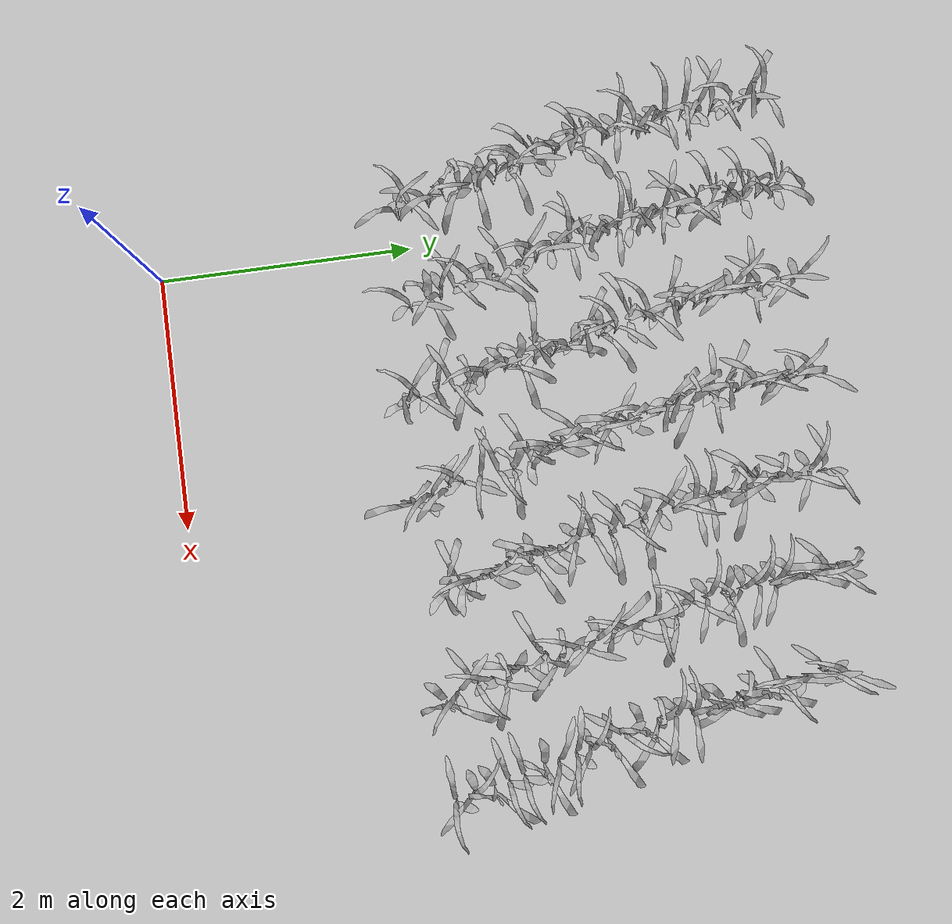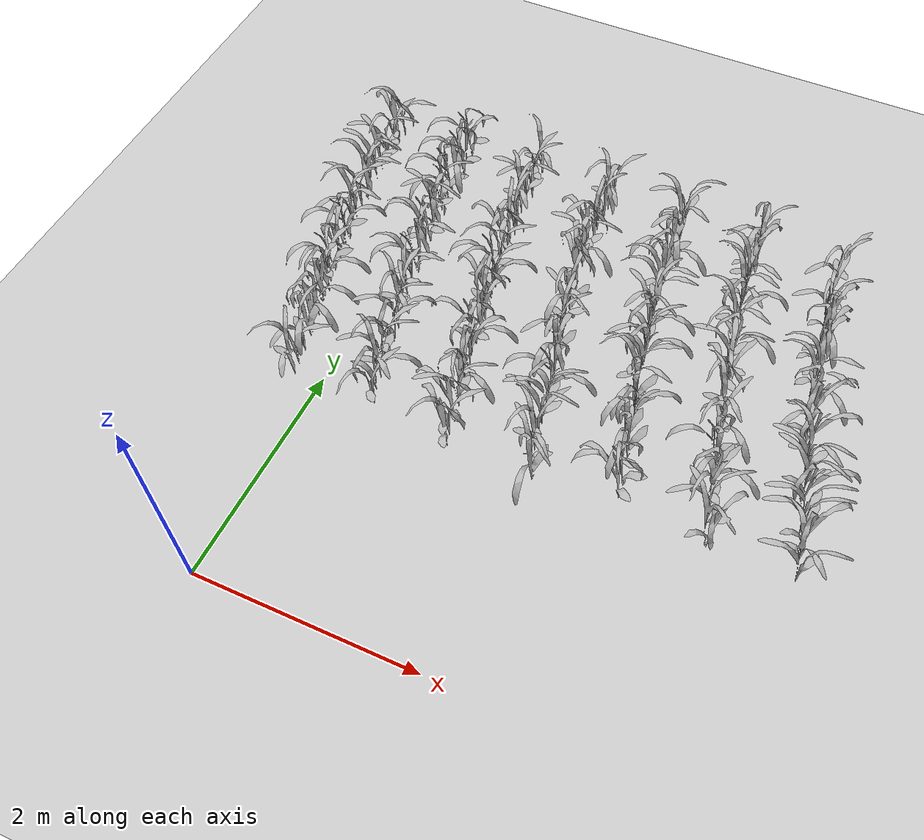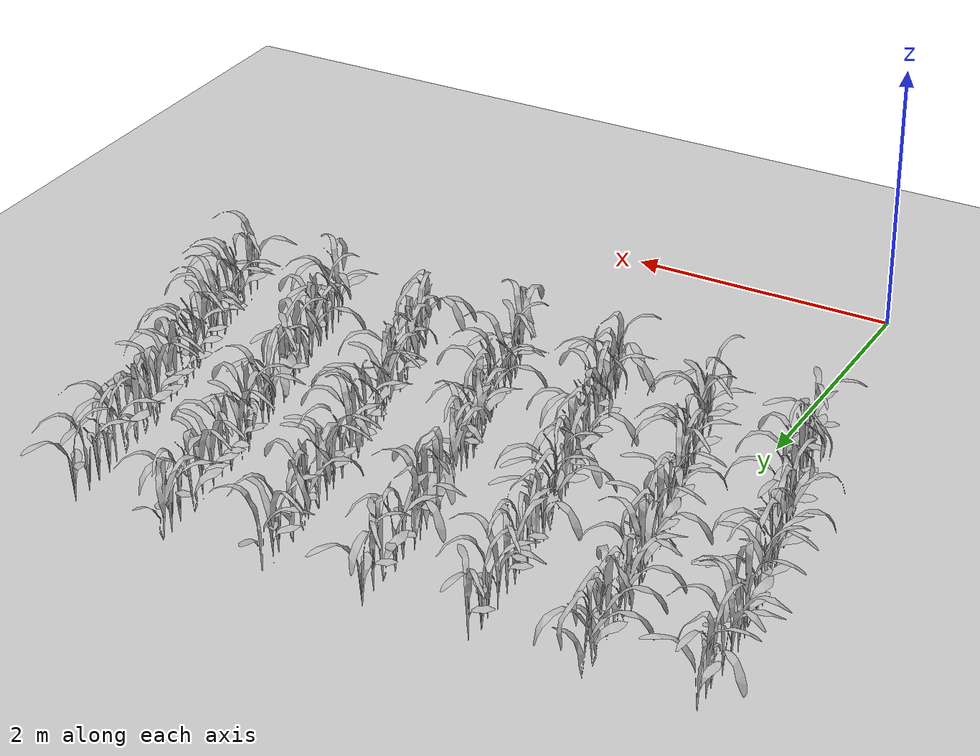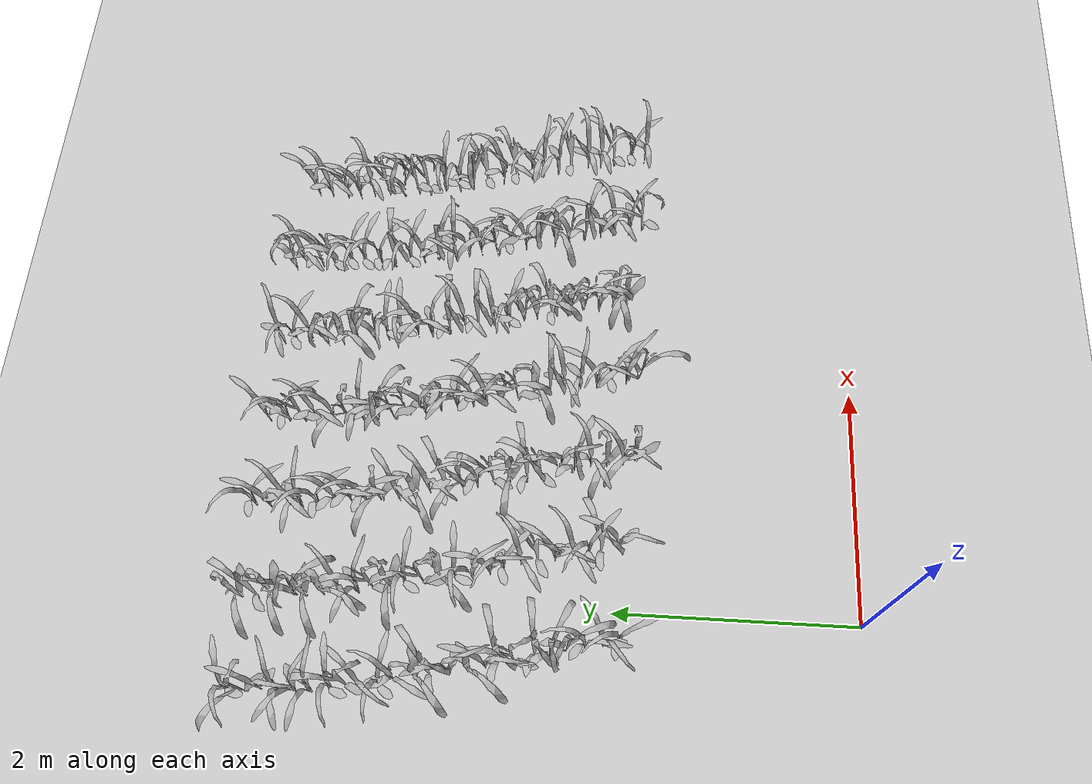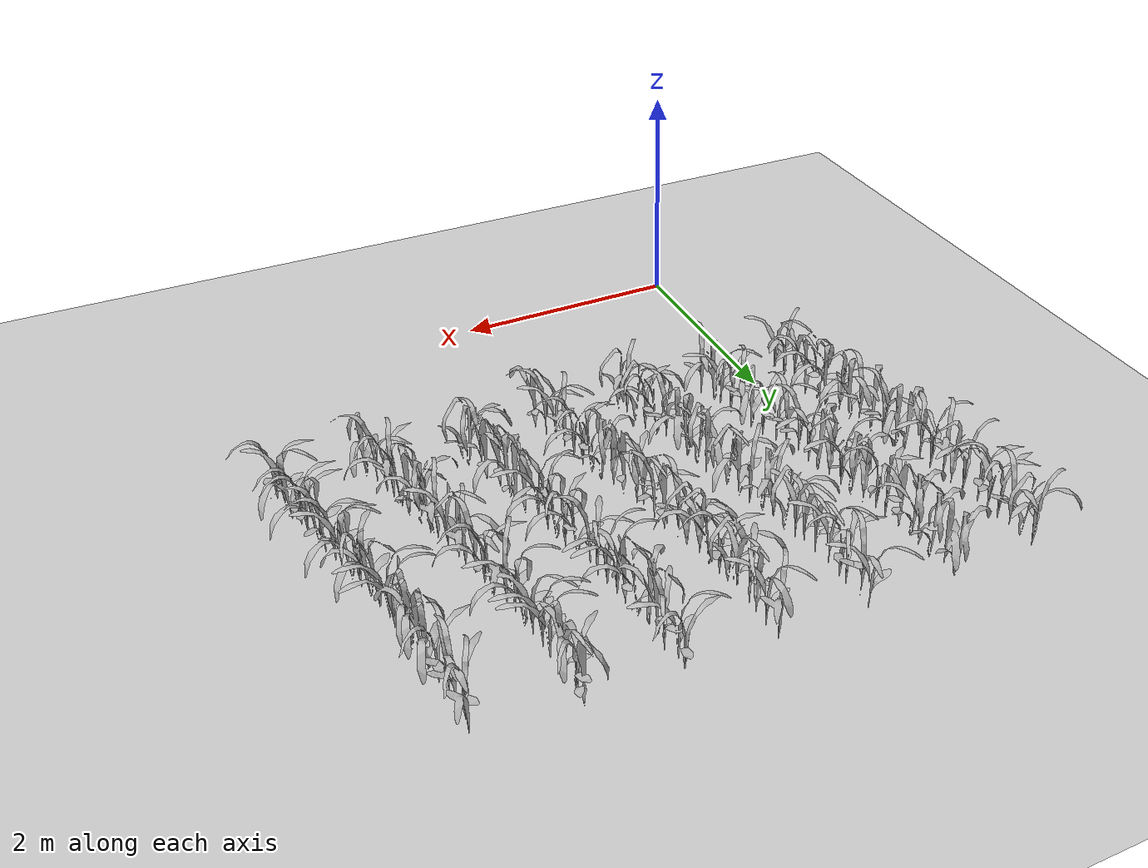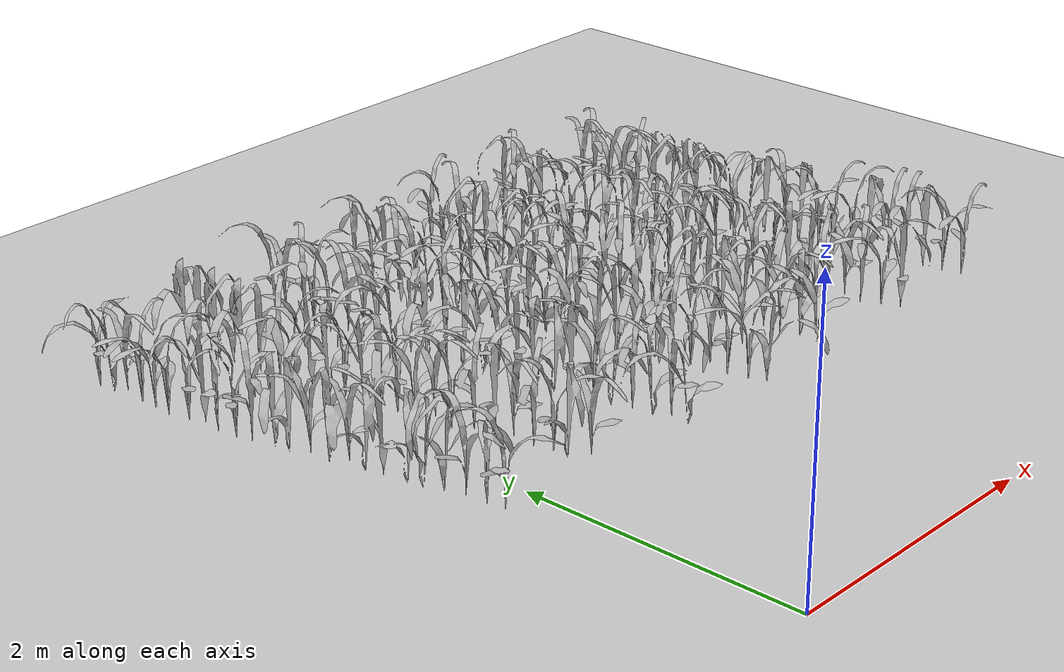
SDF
<sdf version="1.7">
 <world name="default">
  <model name="ground_plane">
   <static>1</static>
   <link name="link">
    <collision name="collision">
     <geometry><plane><normal>0 0 1</normal><size>100 100</size></plane></geometry>
     <surface>
      <contact><collide_bitmask>65535</collide_bitmask></contact>
      <friction><ode><mu>100</mu><mu2>50</mu2></ode></friction>
     </surface>
    </collision>
    <visual name="visual">
     <cast_shadows>0</cast_shadows>
     <geometry><plane><normal>0 0 1</normal><size>100 100</size></plane></geometry>
     <material>
      <script><uri>file://media/materials/scripts/gazebo.material</uri><name>Gazebo/Grey</name></script>
     </material>
    </visual>
   </link>
  </model>
  <include>
   <uri>model://maize_02</uri>
   <pose>-0.24445892764736263 1.9384839961958205 0.0 0.0 0.0 1.0710391218585216</pose>
   <name>maize_02_0365</name>
   <static>true</static>
  </include>
  <include>
   <uri>model://maize_02</uri>
   <pose>-0.27427350530817424 2.053474584799019 0.0 0.0 0.0 2.7879307663528508</pose>
   <name>maize_02_0366</name>
   <static>true</static>
  </include>
  <include>
   <uri>model://maize_02</uri>
   <pose>-0.29909877031778304 2.1970733973737597 0.0 0.0 0.0 0.4922373083842252</pose>
   <name>maize_02_0367</name>
   <static>true</static>
  </include>
  <include>
   <uri>model://maize_01</uri>
   <pose>-0.32571598476350544 2.3446832980346977 0.0 0.0 0.0 5.929734194963458</pose>
   <name>maize_01_0368</name>
   <static>true</static>
  </include>
  <include>
   <uri>model://maize_01</uri>
   <pose>-0.3722263588799824 2.466154109992123 0.0 0.0 0.0 0.3753085193743158</pose>
   <name>maize_01_0369</name>
   <static>true</static>
  </include>
  <include>
   <uri>model://maize_01</uri>
   <pose>-0.38595312293316414 2.5805051813929896 0.0 0.0 0.0 0.9356842475710311</pose>
   <name>maize_01_0370</name>
   <static>true</static>
  </include>
  <include>
   <uri>model://maize_01</uri>
   <pose>-0.42900116233821733 2.735872208015546 0.0 0.0 0.0 2.3897633508217253</pose>
   <name>maize_01_0371</name>
   <static>true</static>
  </include>
  <include>
   <uri>model://maize_01</uri>
   <pose>-0.44737855095906937 2.866231424387552 0.0 0.0 0.0 1.0767705662089158</pose>
   <name>maize_01_0372</name>
   <static>true</static>
  </include>
  <include>
   <uri>model://maize_02</uri>
   <pose>-0.48446931470679405 2.9616740798866252 0.0 0.0 0.0 3.564089215423871</pose>
   <name>maize_02_0373</name>
   <static>true</static>
  </include>
  <include>
   <uri>model://maize_01</uri>
   <pose>-0.5270350517395709 3.097213238053348 0.0 0.0 0.0 4.827960391614151</pose>
   <name>maize_01_0374</name>
   <static>true</static>
  </include>
  <include>
   <uri>model://maize_02</uri>
   <pose>-0.5421163956441427 3.234525912303266 0.0 0.0 0.0 4.072297796404714</pose>
   <name>maize_02_0375</name>
   <static>true</static>
  </include>
  <include>
   <uri>model://maize_01</uri>
   <pose>-0.5742396151583463 3.3835778522982722 0.0 0.0 0.0 1.4798450669164558</pose>
   <name>maize_01_0376</name>
   <static>true</static>
  </include>
  <include>
   <uri>model://maize_01</uri>
   <pose>-0.5982524000756028 3.490787464547854 0.0 0.0 0.0 4.645254110408282</pose>
   <name>maize_01_0377</name>
   <static>true</static>
  </include>
  <include>
   <uri>model://maize_02</uri>
   <pose>-0.639140133071446 3.6475700670385796 0.0 0.0 0.0 0.11293152083749888</pose>
   <name>maize_02_0378</name>
   <static>true</static>
  </include>
  <include>
   <uri>model://maize_02</uri>
   <pose>-0.6683789753091002 3.7555709422397983 0.0 0.0 0.0 2.0072900729207936</pose>
   <name>maize_02_0379</name>
   <static>true</static>
  </include>
  <include>
   <uri>model://maize_02</uri>
   <pose>-0.689659808126747 3.8962261183374527 0.0 0.0 0.0 3.0424600085870614</pose>
   <name>maize_02_0380</name>
   <static>true</static>
  </include>
  <include>
   <uri>model://maize_01</uri>
   <pose>-0.682284637268196 4.015514365349149 0.0 0.0 0.0 2.415459327614074</pose>
   <name>maize_01_0381</name>
   <static>true</static>
  </include>
  <include>
   <uri>model://maize_02</uri>
   <pose>-0.7152451021549532 4.131930696935686 0.0 0.0 0.0 2.299748197654124</pose>
   <name>maize_02_0382</name>
   <static>true</static>
  </include>
  <include>
   <uri>model://maize_02</uri>
   <pose>-0.7451488394861155 4.290696565122539 0.0 0.0 0.0 5.146302556725242</pose>
   <name>maize_02_0383</name>
   <static>true</static>
  </include>
  <include>
   <uri>model://maize_02</uri>
   <pose>-0.7501709862731477 4.408623222810255 0.0 0.0 0.0 4.722988079257089</pose>
   <name>maize_02_0384</name>
   <static>true</static>
  </include>
  <include>
   <uri>model://maize_02</uri>
   <pose>-0.753494488484732 4.532384795799211 0.0 0.0 0.0 5.609470144965345</pose>
   <name>maize_02_0385</name>
   <static>true</static>
  </include>
  <include>
   <uri>model://maize_02</uri>
   <pose>-0.745769445124992 4.676442206631667 0.0 0.0 0.0 3.541653562915884</pose>
   <name>maize_02_0386</name>
   <static>true</static>
  </include>
  <include>
   <uri>model://maize_01</uri>
   <pose>-0.765908414765576 4.79520312520197 0.0 0.0 0.0 3.3103181189144815</pose>
   <name>maize_01_0387</name>
   <static>true</static>
  </include>
  <include>
   <uri>model://maize_02</uri>
   <pose>-0.7713874547957479 4.923124775371192 0.0 0.0 0.0 2.441048138852672</pose>
   <name>maize_02_0388</name>
   <static>true</static>
  </include>
  <include>
   <uri>model://maize_02</uri>
   <pose>0.5260984973107267 1.956129106671902 0.0 0.0 0.0 3.4059487794176473</pose>
   <name>maize_02_0440</name>
   <static>true</static>
  </include>
  <include>
   <uri>model://maize_01</uri>
   <pose>0.46989187685906203 2.0927706809461486 0.0 0.0 0.0 1.2016309172552149</pose>
   <name>maize_01_0441</name>
   <static>true</static>
  </include>
  <include>
   <uri>model://maize_02</uri>
   <pose>0.45887887944169375 2.1976281253083587 0.0 0.0 0.0 1.4679828246953652</pose>
   <name>maize_02_0442</name>
   <static>true</static>
  </include>
  <include>
   <uri>model://maize_02</uri>
   <pose>0.42373177701208203 2.325751552274466 0.0 0.0 0.0 5.8751789555728955</pose>
   <name>maize_02_0443</name>
   <static>true</static>
  </include>
  <include>
   <uri>model://maize_02</uri>
   <pose>0.40029293213330125 2.462413216717971 0.0 0.0 0.0 3.2393652863035958</pose>
   <name>maize_02_0444</name>
   <static>true</static>
  </include>
  <include>
   <uri>model://maize_01</uri>
   <pose>0.37615780835813134 2.5965474299697022 0.0 0.0 0.0 1.630250440600382</pose>
   <name>maize_01_0445</name>
   <static>true</static>
  </include>
  <include>
   <uri>model://maize_02</uri>
   <pose>0.3387216699903976 2.7366418340980387 0.0 0.0 0.0 5.85215825192325</pose>
   <name>maize_02_0446</name>
   <static>true</static>
  </include>
  <include>
   <uri>model://maize_02</uri>
   <pose>0.2883115915058638 2.8755628216305564 0.0 0.0 0.0 1.4263102520479356</pose>
   <name>maize_02_0447</name>
   <static>true</static>
  </include>
  <include>
   <uri>model://maize_02</uri>
   <pose>0.26010073040860665 2.981360341326566 0.0 0.0 0.0 3.6912123552028793</pose>
   <name>maize_02_0448</name>
   <static>true</static>
  </include>
  <include>
   <uri>model://maize_02</uri>
   <pose>0.22002613656200123 3.1201571462957944 0.0 0.0 0.0 4.232262856114509</pose>
   <name>maize_02_0449</name>
   <static>true</static>
  </include>
  <include>
   <uri>model://maize_02</uri>
   <pose>0.20077140758237513 3.2498962715998094 0.0 0.0 0.0 2.258560044896031</pose>
   <name>maize_02_0450</name>
   <static>true</static>
  </include>
  <include>
   <uri>model://maize_01</uri>
   <pose>0.1834526039565129 3.384492169690914 0.0 0.0 0.0 4.690816042693632</pose>
   <name>maize_01_0451</name>
   <static>true</static>
  </include>
  <include>
   <uri>model://maize_01</uri>
   <pose>0.157137774933403 3.4996485781428857 0.0 0.0 0.0 2.6065439800028662</pose>
   <name>maize_01_0452</name>
   <static>true</static>
  </include>
  <include>
   <uri>model://maize_02</uri>
   <pose>0.13741261967310928 3.6463856435647526 0.0 0.0 0.0 2.083719826094306</pose>
   <name>maize_02_0453</name>
   <static>true</static>
  </include>
  <include>
   <uri>model://maize_01</uri>
   <pose>0.11461267545091194 3.7699469730786093 0.0 0.0 0.0 4.0677186259569265</pose>
   <name>maize_01_0454</name>
   <static>true</static>
  </include>
  <include>
   <uri>model://maize_01</uri>
   <pose>0.08769558461130492 3.8946575100047487 0.0 0.0 0.0 2.470918002381718</pose>
   <name>maize_01_0455</name>
   <static>true</static>
  </include>
  <include>
   <uri>model://maize_02</uri>
   <pose>0.04700278519219539 4.019693959851041 0.0 0.0 0.0 4.997512420219515</pose>
   <name>maize_02_0456</name>
   <static>true</static>
  </include>
  <include>
   <uri>model://maize_02</uri>
   <pose>0.04590872154912842 4.148013495995795 0.0 0.0 0.0 6.012937727912429</pose>
   <name>maize_02_0457</name>
   <static>true</static>
  </include>
  <include>
   <uri>model://maize_01</uri>
   <pose>0.013045230744774955 4.2941204559776205 0.0 0.0 0.0 5.107080734016392</pose>
   <name>maize_01_0458</name>
   <static>true</static>
  </include>
  <include>
   <uri>model://maize_01</uri>
   <pose>-0.003980134268200735 4.434985317410674 0.0 0.0 0.0 4.332582812214241</pose>
   <name>maize_01_0459</name>
   <static>true</static>
  </include>
  <include>
   <uri>model://maize_01</uri>
   <pose>0.0043454578759233595 4.532621500905921 0.0 0.0 0.0 6.096734707663429</pose>
   <name>maize_01_0460</name>
   <static>true</static>
  </include>
  <include>
   <uri>model://maize_01</uri>
   <pose>0.002607028447661059 4.686505505235092 0.0 0.0 0.0 4.338382517627387</pose>
   <name>maize_01_0461</name>
   <static>true</static>
  </include>
  <include>
   <uri>model://maize_01</uri>
   <pose>-0.03227277876319187 4.809688094150469 0.0 0.0 0.0 1.8517798671550867</pose>
   <name>maize_01_0462</name>
   <static>true</static>
  </include>
  <include>
   <uri>model://maize_01</uri>
   <pose>-0.03627234156456835 4.948496108704178 0.0 0.0 0.0 4.321784671657764</pose>
   <name>maize_01_0463</name>
   <static>true</static>
  </include>
  <include>
   <uri>model://maize_01</uri>
   <pose>1.2820967636308997 1.8366710458118536 0.0 0.0 0.0 3.243461569829623</pose>
   <name>maize_01_0516</name>
   <static>true</static>
  </include>
  <include>
   <uri>model://maize_02</uri>
   <pose>1.2503116153296039 1.9367808966846514 0.0 0.0 0.0 3.03095532842932</pose>
   <name>maize_02_0517</name>
   <static>true</static>
  </include>
  <include>
   <uri>model://maize_01</uri>
   <pose>1.229864821709296 2.073537109121997 0.0 0.0 0.0 3.5913244704149796</pose>
   <name>maize_01_0518</name>
   <static>true</static>
  </include>
  <include>
   <uri>model://maize_02</uri>
   <pose>1.2034079943792884 2.2120003784279123 0.0 0.0 0.0 5.80301938764072</pose>
   <name>maize_02_0519</name>
   <static>true</static>
  </include>
  <include>
   <uri>model://maize_01</uri>
   <pose>1.1642899704611034 2.3448118223418732 0.0 0.0 0.0 0.3958595112023646</pose>
   <name>maize_01_0520</name>
   <static>true</static>
  </include>
  <include>
   <uri>model://maize_02</uri>
   <pose>1.132764982109047 2.4650601632803375 0.0 0.0 0.0 3.9252704153074887</pose>
   <name>maize_02_0521</name>
   <static>true</static>
  </include>
  <include>
   <uri>model://maize_01</uri>
   <pose>1.1002782475947173 2.616763260068271 0.0 0.0 0.0 1.886475803744727</pose>
   <name>maize_01_0522</name>
   <static>true</static>
  </include>
  <include>
   <uri>model://maize_01</uri>
   <pose>1.0656089832327786 2.7285337954442306 0.0 0.0 0.0 1.0195504001180753</pose>
   <name>maize_01_0523</name>
   <static>true</static>
  </include>
  <include>
   <uri>model://maize_01</uri>
   <pose>1.038941540521242 2.868742092631584 0.0 0.0 0.0 3.883330333141747</pose>
   <name>maize_01_0524</name>
   <static>true</static>
  </include>
  <include>
   <uri>model://maize_01</uri>
   <pose>1.0309343749200373 3.000253754141475 0.0 0.0 0.0 2.136930633569574</pose>
   <name>maize_01_0525</name>
   <static>true</static>
  </include>
  <include>
   <uri>model://maize_02</uri>
   <pose>0.9937140569522335 3.139745036078186 0.0 0.0 0.0 0.7382205558171442</pose>
   <name>maize_02_0526</name>
   <static>true</static>
  </include>
  <include>
   <uri>model://maize_01</uri>
   <pose>0.9627771169887073 3.2508342733676536 0.0 0.0 0.0 3.387664312239525</pose>
   <name>maize_01_0527</name>
   <static>true</static>
  </include>
  <include>
   <uri>model://maize_01</uri>
   <pose>0.9372212743823486 3.3877665681609295 0.0 0.0 0.0 1.321719672128595</pose>
   <name>maize_01_0528</name>
   <static>true</static>
  </include>
  <include>
   <uri>model://maize_02</uri>
   <pose>0.9131241262665016 3.5204825499192585 0.0 0.0 0.0 2.9852844627000743</pose>
   <name>maize_02_0529</name>
   <static>true</static>
  </include>
  <include>
   <uri>model://maize_01</uri>
   <pose>0.8586347255362453 3.645085442458822 0.0 0.0 0.0 4.399199008526682</pose>
   <name>maize_01_0530</name>
   <static>true</static>
  </include>
  <include>
   <uri>model://maize_02</uri>
   <pose>0.8438814396605793 3.771081881038772 0.0 0.0 0.0 2.837842423577858</pose>
   <name>maize_02_0531</name>
   <static>true</static>
  </include>
  <include>
   <uri>model://maize_01</uri>
   <pose>0.8265457737232907 3.9180081046926554 0.0 0.0 0.0 3.568930271038513</pose>
   <name>maize_01_0532</name>
   <static>true</static>
  </include>
  <include>
   <uri>model://maize_02</uri>
   <pose>0.8076539819783154 4.046807277931168 0.0 0.0 0.0 0.8776411563327623</pose>
   <name>maize_02_0533</name>
   <static>true</static>
  </include>
  <include>
   <uri>model://maize_02</uri>
   <pose>0.8030465417823903 4.168087178214278 0.0 0.0 0.0 0.4791214305377719</pose>
   <name>maize_02_0534</name>
   <static>true</static>
  </include>
  <include>
   <uri>model://maize_02</uri>
   <pose>0.7728584782245186 4.281622514585938 0.0 0.0 0.0 0.4952298874458967</pose>
   <name>maize_02_0535</name>
   <static>true</static>
  </include>
  <include>
   <uri>model://maize_02</uri>
   <pose>0.7487143079830375 4.42674731317472 0.0 0.0 0.0 1.2305274095877576</pose>
   <name>maize_02_0536</name>
   <static>true</static>
  </include>
  <include>
   <uri>model://maize_02</uri>
   <pose>0.7373429620131194 4.5700199593311615 0.0 0.0 0.0 5.22709111648063</pose>
   <name>maize_02_0537</name>
   <static>true</static>
  </include>
  <include>
   <uri>model://maize_02</uri>
   <pose>0.7499960772870843 4.674510091348483 0.0 0.0 0.0 6.195284488685978</pose>
   <name>maize_02_0538</name>
   <static>true</static>
  </include>
  <include>
   <uri>model://maize_02</uri>
   <pose>0.7158278568508202 4.81498021030388 0.0 0.0 0.0 3.5174361558836367</pose>
   <name>maize_02_0539</name>
   <static>true</static>
  </include>
  <include>
   <uri>model://maize_02</uri>
   <pose>0.7317559271946786 4.947772039493617 0.0 0.0 0.0 1.3004671810371689</pose>
   <name>maize_02_0540</name>
   <static>true</static>
  </include>
  <include>
   <uri>model://maize_01</uri>
   <pose>2.0578756703170336 1.819922465761694 0.0 0.0 0.0 5.63332583137449</pose>
   <name>maize_01_0593</name>
   <static>true</static>
  </include>
  <include>
   <uri>model://maize_02</uri>
   <pose>2.0085338927119047 1.9288748935719384 0.0 0.0 0.0 4.544203348972657</pose>
   <name>maize_02_0594</name>
   <static>true</static>
  </include>
  <include>
   <uri>model://maize_02</uri>
   <pose>1.9716864099359934 2.06758810836012 0.0 0.0 0.0 1.359756417866556</pose>
   <name>maize_02_0595</name>
   <static>true</static>
  </include>
  <include>
   <uri>model://maize_02</uri>
   <pose>1.945488588042189 2.1845956577792314 0.0 0.0 0.0 3.285470333730396</pose>
   <name>maize_02_0596</name>
   <static>true</static>
  </include>
  <include>
   <uri>model://maize_02</uri>
   <pose>1.919812067753935 2.3246947213264506 0.0 0.0 0.0 5.146438974124855</pose>
   <name>maize_02_0597</name>
   <static>true</static>
  </include>
  <include>
   <uri>model://maize_02</uri>
   <pose>1.9009560652411082 2.4668209506261047 0.0 0.0 0.0 5.7288880810104486</pose>
   <name>maize_02_0598</name>
   <static>true</static>
  </include>
  <include>
   <uri>model://maize_01</uri>
   <pose>1.8753299701160768 2.581413656868723 0.0 0.0 0.0 0.8144732043727393</pose>
   <name>maize_01_0599</name>
   <static>true</static>
  </include>
  <include>
   <uri>model://maize_01</uri>
   <pose>1.8437523162155978 2.724814592600867 0.0 0.0 0.0 4.39158929531414</pose>
   <name>maize_01_0600</name>
   <static>true</static>
  </include>
  <include>
   <uri>model://maize_01</uri>
   <pose>1.8036748127116151 2.851020883673344 0.0 0.0 0.0 2.3906250094714405</pose>
   <name>maize_01_0601</name>
   <static>true</static>
  </include>
  <include>
   <uri>model://maize_01</uri>
   <pose>1.7648821479822832 2.983512956231396 0.0 0.0 0.0 5.434819227936593</pose>
   <name>maize_01_0602</name>
   <static>true</static>
  </include>
  <include>
   <uri>model://maize_02</uri>
   <pose>1.7168032262995003 3.1204715994548455 0.0 0.0 0.0 6.2316088489081745</pose>
   <name>maize_02_0603</name>
   <static>true</static>
  </include>
  <include>
   <uri>model://maize_02</uri>
   <pose>1.707366270834101 3.230312061672161 0.0 0.0 0.0 0.6019555547264492</pose>
   <name>maize_02_0604</name>
   <static>true</static>
  </include>
  <include>
   <uri>model://maize_02</uri>
   <pose>1.681022690961442 3.3596486469649833 0.0 0.0 0.0 4.676894916928447</pose>
   <name>maize_02_0605</name>
   <static>true</static>
  </include>
  <include>
   <uri>model://maize_01</uri>
   <pose>1.66247424286803 3.5043417999136044 0.0 0.0 0.0 5.368515239837201</pose>
   <name>maize_01_0606</name>
   <static>true</static>
  </include>
  <include>
   <uri>model://maize_02</uri>
   <pose>1.6111010146767855 3.6294320650253096 0.0 0.0 0.0 3.6888025602198122</pose>
   <name>maize_02_0607</name>
   <static>true</static>
  </include>
  <include>
   <uri>model://maize_01</uri>
   <pose>1.6071195685726802 3.7748621636632422 0.0 0.0 0.0 3.0782252463856765</pose>
   <name>maize_01_0608</name>
   <static>true</static>
  </include>
  <include>
   <uri>model://maize_01</uri>
   <pose>1.5566503084430223 3.8864078048060837 0.0 0.0 0.0 2.7961955232663565</pose>
   <name>maize_01_0609</name>
   <static>true</static>
  </include>
  <include>
   <uri>model://maize_01</uri>
   <pose>1.5513453674159183 4.025269307450171 0.0 0.0 0.0 0.2690194715835279</pose>
   <name>maize_01_0610</name>
   <static>true</static>
  </include>
  <include>
   <uri>model://maize_02</uri>
   <pose>1.529099991916836 4.151783550183793 0.0 0.0 0.0 5.240973319727714</pose>
   <name>maize_02_0611</name>
   <static>true</static>
  </include>
  <include>
   <uri>model://maize_01</uri>
   <pose>1.5133752032010814 4.257660261958647 0.0 0.0 0.0 3.342866149964084</pose>
   <name>maize_01_0612</name>
   <static>true</static>
  </include>
  <include>
   <uri>model://maize_02</uri>
   <pose>1.5117235879212856 4.395047858556848 0.0 0.0 0.0 0.644598142989884</pose>
   <name>maize_02_0613</name>
   <static>true</static>
  </include>
  <include>
   <uri>model://maize_02</uri>
   <pose>1.4877961748428798 4.533237407529119 0.0 0.0 0.0 0.04720962825013773</pose>
   <name>maize_02_0614</name>
   <static>true</static>
  </include>
  <include>
   <uri>model://maize_01</uri>
   <pose>1.5064251777979594 4.6555850271668335 0.0 0.0 0.0 2.4272185446169328</pose>
   <name>maize_01_0615</name>
   <static>true</static>
  </include>
  <include>
   <uri>model://maize_02</uri>
   <pose>1.4937622637304295 4.786012777615059 0.0 0.0 0.0 1.205151432284717</pose>
   <name>maize_02_0616</name>
   <static>true</static>
  </include>
  <include>
   <uri>model://maize_02</uri>
   <pose>1.4827266394912166 4.9421218596760434 0.0 0.0 0.0 3.128146637313119</pose>
   <name>maize_02_0617</name>
   <static>true</static>
  </include>
  <include>
   <uri>model://maize_01</uri>
   <pose>2.7667368310087235 1.95091129642417 0.0 0.0 0.0 3.5755169065687737</pose>
   <name>maize_01_0671</name>
   <static>true</static>
  </include>
  <include>
   <uri>model://maize_01</uri>
   <pose>2.751480683734392 2.075257007819117 0.0 0.0 0.0 4.271861909267561</pose>
   <name>maize_01_0672</name>
   <static>true</static>
  </include>
  <include>
   <uri>model://maize_02</uri>
   <pose>2.691035177096023 2.192352297171492 0.0 0.0 0.0 3.9299335099195116</pose>
   <name>maize_02_0673</name>
   <static>true</static>
  </include>
  <include>
   <uri>model://maize_01</uri>
   <pose>2.6895185445318677 2.326432880786489 0.0 0.0 0.0 5.456637132762373</pose>
   <name>maize_01_0674</name>
   <static>true</static>
  </include>
  <include>
   <uri>model://maize_01</uri>
   <pose>2.6232579572570542 2.454818332948529 0.0 0.0 0.0 5.631378779693179</pose>
   <name>maize_01_0675</name>
   <static>true</static>
  </include>
  <include>
   <uri>model://maize_01</uri>
   <pose>2.599306659980399 2.603806481390522 0.0 0.0 0.0 1.2996892613572897</pose>
   <name>maize_01_0676</name>
   <static>true</static>
  </include>
  <include>
   <uri>model://maize_01</uri>
   <pose>2.5933776110266717 2.735509354618397 0.0 0.0 0.0 5.120113461572326</pose>
   <name>maize_01_0677</name>
   <static>true</static>
  </include>
  <include>
   <uri>model://maize_01</uri>
   <pose>2.5611443172748127 2.8471291260002185 0.0 0.0 0.0 5.331131474946168</pose>
   <name>maize_01_0678</name>
   <static>true</static>
  </include>
  <include>
   <uri>model://maize_02</uri>
   <pose>2.5047304389173655 2.9768770262156683 0.0 0.0 0.0 1.8784028200067402</pose>
   <name>maize_02_0679</name>
   <static>true</static>
  </include>
  <include>
   <uri>model://maize_02</uri>
   <pose>2.4815842571684983 3.106716496747652 0.0 0.0 0.0 2.571683869448674</pose>
   <name>maize_02_0680</name>
   <static>true</static>
  </include>
  <include>
   <uri>model://maize_01</uri>
   <pose>2.4680333718532945 3.245185891557569 0.0 0.0 0.0 0.8518018212985958</pose>
   <name>maize_01_0681</name>
   <static>true</static>
  </include>
  <include>
   <uri>model://maize_02</uri>
   <pose>2.4399218958703845 3.3620817252578843 0.0 0.0 0.0 6.010358943132693</pose>
   <name>maize_02_0682</name>
   <static>true</static>
  </include>
  <include>
   <uri>model://maize_01</uri>
   <pose>2.398623292846906 3.4873989023854883 0.0 0.0 0.0 0.8419180261363791</pose>
   <name>maize_01_0683</name>
   <static>true</static>
  </include>
  <include>
   <uri>model://maize_02</uri>
   <pose>2.3586847004133316 3.643152918360681 0.0 0.0 0.0 4.676755511041185</pose>
   <name>maize_02_0684</name>
   <static>true</static>
  </include>
  <include>
   <uri>model://maize_02</uri>
   <pose>2.3497733932412186 3.7649762635516297 0.0 0.0 0.0 0.14995154859658713</pose>
   <name>maize_02_0685</name>
   <static>true</static>
  </include>
  <include>
   <uri>model://maize_02</uri>
   <pose>2.3349363189497194 3.9016352361524214 0.0 0.0 0.0 2.2441534577167737</pose>
   <name>maize_02_0686</name>
   <static>true</static>
  </include>
  <include>
   <uri>model://maize_02</uri>
   <pose>2.310375455721466 4.022814402009467 0.0 0.0 0.0 2.1417970331547846</pose>
   <name>maize_02_0687</name>
   <static>true</static>
  </include>
  <include>
   <uri>model://maize_01</uri>
   <pose>2.297444650510356 4.1388501251635725 0.0 0.0 0.0 5.714103594085102</pose>
   <name>maize_01_0688</name>
   <static>true</static>
  </include>
  <include>
   <uri>model://maize_01</uri>
   <pose>2.2763093662352865 4.297241508685874 0.0 0.0 0.0 0.4730096719053218</pose>
   <name>maize_01_0689</name>
   <static>true</static>
  </include>
  <include>
   <uri>model://maize_01</uri>
   <pose>2.237199080844188 4.415871921024398 0.0 0.0 0.0 4.835441418789532</pose>
   <name>maize_01_0690</name>
   <static>true</static>
  </include>
  <include>
   <uri>model://maize_01</uri>
   <pose>2.234139282963342 4.547590396067936 0.0 0.0 0.0 5.918243973277982</pose>
   <name>maize_01_0691</name>
   <static>true</static>
  </include>
  <include>
   <uri>model://maize_02</uri>
   <pose>2.254777015810989 4.688440888307922 0.0 0.0 0.0 0.06251315045480253</pose>
   <name>maize_02_0692</name>
   <static>true</static>
  </include>
  <include>
   <uri>model://maize_02</uri>
   <pose>2.2105895126976587 4.813729269527474 0.0 0.0 0.0 1.7034670699211203</pose>
   <name>maize_02_0693</name>
   <static>true</static>
  </include>
  <include>
   <uri>model://maize_02</uri>
   <pose>2.220206523472212 4.9328653325086025 0.0 0.0 0.0 5.665555203205248</pose>
   <name>maize_02_0694</name>
   <static>true</static>
  </include>
  <include>
   <uri>model://maize_01</uri>
   <pose>3.5629612249897824 1.8283601282445872 0.0 0.0 0.0 1.9230539119762868</pose>
   <name>maize_01_0747</name>
   <static>true</static>
  </include>
  <include>
   <uri>model://maize_02</uri>
   <pose>3.5029591852011754 1.94883860368241 0.0 0.0 0.0 4.547240797840597</pose>
   <name>maize_02_0748</name>
   <static>true</static>
  </include>
  <include>
   <uri>model://maize_02</uri>
   <pose>3.4648034831913024 2.091511506930036 0.0 0.0 0.0 5.884693038409152</pose>
   <name>maize_02_0749</name>
   <static>true</static>
  </include>
  <include>
   <uri>model://maize_02</uri>
   <pose>3.4432303702194056 2.206657648510205 0.0 0.0 0.0 3.431332332040311</pose>
   <name>maize_02_0750</name>
   <static>true</static>
  </include>
  <include>
   <uri>model://maize_01</uri>
   <pose>3.423976865465367 2.342836348385997 0.0 0.0 0.0 0.47286363019179756</pose>
   <name>maize_01_0751</name>
   <static>true</static>
  </include>
  <include>
   <uri>model://maize_01</uri>
   <pose>3.394385118674379 2.485508824635659 0.0 0.0 0.0 5.2997655086244775</pose>
   <name>maize_01_0752</name>
   <static>true</static>
  </include>
  <include>
   <uri>model://maize_01</uri>
   <pose>3.343099701777111 2.616737980784333 0.0 0.0 0.0 4.369425080668612</pose>
   <name>maize_01_0753</name>
   <static>true</static>
  </include>
  <include>
   <uri>model://maize_01</uri>
   <pose>3.318430348588089 2.7570848372300163 0.0 0.0 0.0 0.08510357018979249</pose>
   <name>maize_01_0754</name>
   <static>true</static>
  </include>
  <include>
   <uri>model://maize_02</uri>
   <pose>3.2941018322470126 2.874293270041926 0.0 0.0 0.0 3.375153275554431</pose>
   <name>maize_02_0755</name>
   <static>true</static>
  </include>
  <include>
   <uri>model://maize_02</uri>
   <pose>3.2597739217354413 3.0110041916876464 0.0 0.0 0.0 1.3005448885410533</pose>
   <name>maize_02_0756</name>
   <static>true</static>
  </include>
  <include>
   <uri>model://maize_01</uri>
   <pose>3.2190415821036145 3.1278879159206636 0.0 0.0 0.0 2.9928569201644297</pose>
   <name>maize_01_0757</name>
   <static>true</static>
  </include>
  <include>
   <uri>model://maize_02</uri>
   <pose>3.2140655911205873 3.2736268966724382 0.0 0.0 0.0 3.3529635359999377</pose>
   <name>maize_02_0758</name>
   <static>true</static>
  </include>
  <include>
   <uri>model://maize_02</uri>
   <pose>3.176747382059285 3.385293208568394 0.0 0.0 0.0 3.9844896501080944</pose>
   <name>maize_02_0759</name>
   <static>true</static>
  </include>
  <include>
   <uri>model://maize_02</uri>
   <pose>3.1458645369328724 3.503795278500839 0.0 0.0 0.0 5.349928313436054</pose>
   <name>maize_02_0760</name>
   <static>true</static>
  </include>
  <include>
   <uri>model://maize_01</uri>
   <pose>3.141407578973284 3.652112795266293 0.0 0.0 0.0 0.41269992498937563</pose>
   <name>maize_01_0761</name>
   <static>true</static>
  </include>
  <include>
   <uri>model://maize_02</uri>
   <pose>3.0798039144311686 3.7773057521324316 0.0 0.0 0.0 3.172760525454208</pose>
   <name>maize_02_0762</name>
   <static>true</static>
  </include>
  <include>
   <uri>model://maize_02</uri>
   <pose>3.0559318931018615 3.893483234691994 0.0 0.0 0.0 1.8366264384817113</pose>
   <name>maize_02_0763</name>
   <static>true</static>
  </include>
  <include>
   <uri>model://maize_01</uri>
   <pose>3.0485060864662894 4.0380821528478945 0.0 0.0 0.0 0.9226077740425567</pose>
   <name>maize_01_0764</name>
   <static>true</static>
  </include>
  <include>
   <uri>model://maize_02</uri>
   <pose>3.0305716738832715 4.165396963412786 0.0 0.0 0.0 1.3670096894892712</pose>
   <name>maize_02_0765</name>
   <static>true</static>
  </include>
  <include>
   <uri>model://maize_02</uri>
   <pose>3.0094774320031674 4.298775922157151 0.0 0.0 0.0 1.8303013452114303</pose>
   <name>maize_02_0766</name>
   <static>true</static>
  </include>
  <include>
   <uri>model://maize_02</uri>
   <pose>3.008514366692071 4.42257156383523 0.0 0.0 0.0 1.7447974451017536</pose>
   <name>maize_02_0767</name>
   <static>true</static>
  </include>
  <include>
   <uri>model://maize_01</uri>
   <pose>2.9849622076167264 4.563706034669512 0.0 0.0 0.0 2.0245106849542154</pose>
   <name>maize_01_0768</name>
   <static>true</static>
  </include>
  <include>
   <uri>model://maize_02</uri>
   <pose>3.003670393293653 4.693193473020622 0.0 0.0 0.0 0.6846046003823065</pose>
   <name>maize_02_0769</name>
   <static>true</static>
  </include>
  <include>
   <uri>model://maize_02</uri>
   <pose>2.9772455610920923 4.827148197698549 0.0 0.0 0.0 6.077386455076236</pose>
   <name>maize_02_0770</name>
   <static>true</static>
  </include>
  <include>
   <uri>model://maize_01</uri>
   <pose>2.9667228317920116 4.93146332811206 0.0 0.0 0.0 5.405965185773608</pose>
   <name>maize_01_0771</name>
   <static>true</static>
  </include>
  <include>
   <uri>model://maize_02</uri>
   <pose>4.288597602382307 1.8236164087978997 0.0 0.0 0.0 5.390617613650143</pose>
   <name>maize_02_0824</name>
   <static>true</static>
  </include>
  <include>
   <uri>model://maize_02</uri>
   <pose>4.255117766824821 1.956855619686072 0.0 0.0 0.0 1.3448165368760867</pose>
   <name>maize_02_0825</name>
   <static>true</static>
  </include>
  <include>
   <uri>model://maize_01</uri>
   <pose>4.244672692456497 2.103887855583149 0.0 0.0 0.0 1.657346464431664</pose>
   <name>maize_01_0826</name>
   <static>true</static>
  </include>
  <include>
   <uri>model://maize_02</uri>
   <pose>4.195225373882893 2.233528803663004 0.0 0.0 0.0 5.5751763820469336</pose>
   <name>maize_02_0827</name>
   <static>true</static>
  </include>
  <include>
   <uri>model://maize_02</uri>
   <pose>4.175147168163548 2.3514768943510505 0.0 0.0 0.0 5.546725354442412</pose>
   <name>maize_02_0828</name>
   <static>true</static>
  </include>
  <include>
   <uri>model://maize_01</uri>
   <pose>4.12937514891733 2.50245906702246 0.0 0.0 0.0 1.2242925460963974</pose>
   <name>maize_01_0829</name>
   <static>true</static>
  </include>
  <include>
   <uri>model://maize_02</uri>
   <pose>4.1097733844118185 2.6234241725979133 0.0 0.0 0.0 4.914831959618019</pose>
   <name>maize_02_0830</name>
   <static>true</static>
  </include>
  <include>
   <uri>model://maize_02</uri>
   <pose>4.067586970165003 2.759774722709603 0.0 0.0 0.0 5.143475527417082</pose>
   <name>maize_02_0831</name>
   <static>true</static>
  </include>
  <include>
   <uri>model://maize_02</uri>
   <pose>4.0485717048106995 2.8648821759355436 0.0 0.0 0.0 1.5762157560845786</pose>
   <name>maize_02_0832</name>
   <static>true</static>
  </include>
  <include>
   <uri>model://maize_01</uri>
   <pose>4.013634194714973 3.003930645144084 0.0 0.0 0.0 1.300394646013347</pose>
   <name>maize_01_0833</name>
   <static>true</static>
  </include>
  <include>
   <uri>model://maize_02</uri>
   <pose>3.975888945361223 3.1257555112967457 0.0 0.0 0.0 0.0070385906186269795</pose>
   <name>maize_02_0834</name>
   <static>true</static>
  </include>
  <include>
   <uri>model://maize_01</uri>
   <pose>3.9466489765148345 3.2636516562252518 0.0 0.0 0.0 1.5618389246638251</pose>
   <name>maize_01_0835</name>
   <static>true</static>
  </include>
  <include>
   <uri>model://maize_01</uri>
   <pose>3.9176558253614266 3.4067578262100917 0.0 0.0 0.0 0.11730484666902435</pose>
   <name>maize_01_0836</name>
   <static>true</static>
  </include>
  <include>
   <uri>model://maize_02</uri>
   <pose>3.88325005729502 3.525829014367583 0.0 0.0 0.0 1.9182168456467061</pose>
   <name>maize_02_0837</name>
   <static>true</static>
  </include>
  <include>
   <uri>model://maize_02</uri>
   <pose>3.884842612634651 3.6642849666940376 0.0 0.0 0.0 2.138518919656164</pose>
   <name>maize_02_0838</name>
   <static>true</static>
  </include>
  <include>
   <uri>model://maize_01</uri>
   <pose>3.8280636078801726 3.801340690651051 0.0 0.0 0.0 2.0075645399314923</pose>
   <name>maize_01_0839</name>
   <static>true</static>
  </include>
  <include>
   <uri>model://maize_01</uri>
   <pose>3.8388654501151733 3.9073328766403788 0.0 0.0 0.0 2.053891557764453</pose>
   <name>maize_01_0840</name>
   <static>true</static>
  </include>
  <include>
   <uri>model://maize_01</uri>
   <pose>3.805616680399335 4.035472995032477 0.0 0.0 0.0 5.958707528483761</pose>
   <name>maize_01_0841</name>
   <static>true</static>
  </include>
  <include>
   <uri>model://maize_01</uri>
   <pose>3.8067130422250535 4.176754311030044 0.0 0.0 0.0 2.014613996323296</pose>
   <name>maize_01_0842</name>
   <static>true</static>
  </include>
  <include>
   <uri>model://maize_02</uri>
   <pose>3.7751694459760894 4.317514456699803 0.0 0.0 0.0 5.810081338208823</pose>
   <name>maize_02_0843</name>
   <static>true</static>
  </include>
  <include>
   <uri>model://maize_02</uri>
   <pose>3.7477837988566995 4.439558819001708 0.0 0.0 0.0 3.6501880775860025</pose>
   <name>maize_02_0844</name>
   <static>true</static>
  </include>
  <include>
   <uri>model://maize_02</uri>
   <pose>3.745476528216203 4.559457242277348 0.0 0.0 0.0 3.725677898851836</pose>
   <name>maize_02_0845</name>
   <static>true</static>
  </include>
  <include>
   <uri>model://maize_02</uri>
   <pose>3.7216898076927474 4.695370743612805 0.0 0.0 0.0 6.184368500700625</pose>
   <name>maize_02_0846</name>
   <static>true</static>
  </include>
  <include>
   <uri>model://maize_02</uri>
   <pose>3.7448384324815147 4.819565846060512 0.0 0.0 0.0 3.2961390196862825</pose>
   <name>maize_02_0847</name>
   <static>true</static>
  </include>
 </world>
</sdf>
